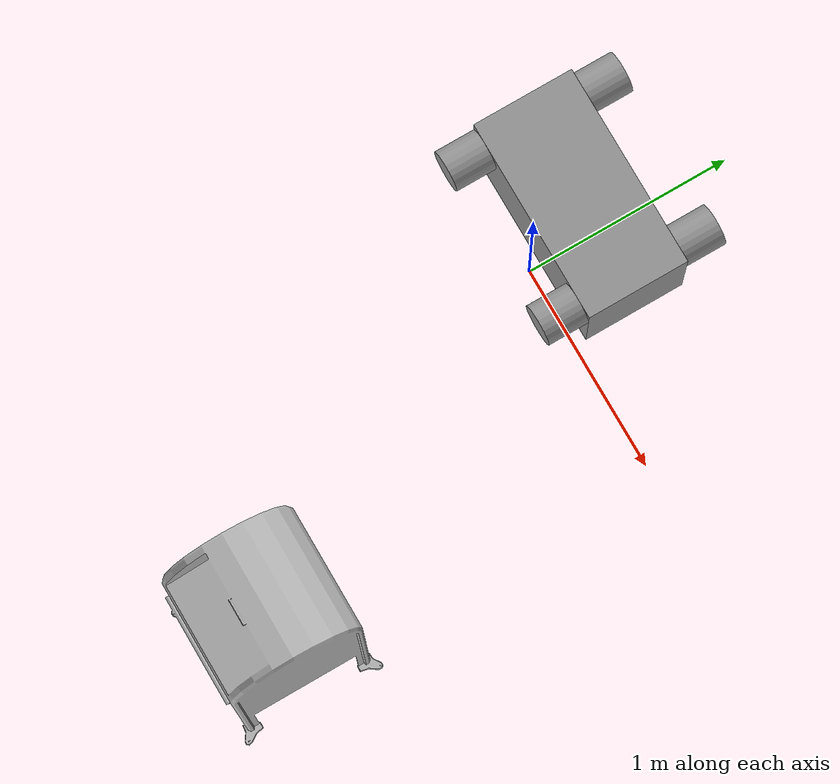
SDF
<?xml version='1.0'?>
<sdf version='1.6'>
  <model name='MODEL'>
    <link name='link_0'>
      <pose frame=''>-0.167264 0.352485 -0.099993 0 -0 0</pose>
      <inertial>
        <mass>1</mass>
        <inertia>
          <ixx>0.166667</ixx>
          <ixy>0</ixy>
          <ixz>0</ixz>
          <iyy>0.166667</iyy>
          <iyz>0</iyz>
          <izz>0.166667</izz>
        </inertia>
        <pose frame=''>0 0 0 0 -0 0</pose>
      </inertial>
      <gravity>1</gravity>
      <self_collide>0</self_collide>
      <kinematic>0</kinematic>
      <visual name='visual'>
        <pose frame=''>0 0 0 0 -0 0</pose>
        <geometry>
          <box>
            <size>1 0.5 0.5</size>
          </box>
        </geometry>
        <material>
          <lighting>1</lighting>
          <script>
            <uri>file://media/materials/scripts/gazebo.material</uri>
            <name>Gazebo/Grey</name>
          </script>
          <shader type='pixel'>
            <normal_map>__default__</normal_map>
          </shader>
          <ambient>0.3 0.3 0.3 1</ambient>
          <diffuse>0.7 0.7 0.7 1</diffuse>
          <specular>0.01 0.01 0.01 1</specular>
          <emissive>0 0 0 1</emissive>
        </material>
        <transparency>0</transparency>
        <cast_shadows>1</cast_shadows>
      </visual>
      <collision name='collision'>
        <laser_retro>0</laser_retro>
        <max_contacts>10</max_contacts>
        <pose frame=''>0 0 0 0 -0 0</pose>
        <geometry>
          <box>
            <size>1 0.5 0.5</size>
          </box>
        </geometry>
        <surface>
          <friction>
            <ode>
              <mu>1</mu>
              <mu2>1</mu2>
              <fdir1>0 0 0</fdir1>
              <slip1>0</slip1>
              <slip2>0</slip2>
            </ode>
            <torsional>
              <coefficient>1</coefficient>
              <patch_radius>0</patch_radius>
              <surface_radius>0</surface_radius>
              <use_patch_radius>1</use_patch_radius>
              <ode>
                <slip>0</slip>
              </ode>
            </torsional>
          </friction>
          <bounce>
            <restitution_coefficient>0</restitution_coefficient>
            <threshold>1e+06</threshold>
          </bounce>
          <contact>
            <collide_without_contact>0</collide_without_contact>
            <collide_without_contact_bitmask>1</collide_without_contact_bitmask>
            <collide_bitmask>1</collide_bitmask>
            <ode>
              <soft_cfm>0</soft_cfm>
              <soft_erp>0.2</soft_erp>
              <kp>1e+13</kp>
              <kd>1</kd>
              <max_vel>0.01</max_vel>
              <min_depth>0</min_depth>
            </ode>
            <bullet>
              <split_impulse>1</split_impulse>
              <split_impulse_penetration_threshold>-0.01</split_impulse_penetration_threshold>
              <soft_cfm>0</soft_cfm>
              <soft_erp>0.2</soft_erp>
              <kp>1e+13</kp>
              <kd>1</kd>
            </bullet>
          </contact>
        </surface>
      </collision>
    </link>
    <link name='link_1_clone'>
      <pose frame=''>-0.567264 0.702495 0.049997 1.5707 -0 0</pose>
      <inertial>
        <mass>1</mass>
        <inertia>
          <ixx>0.145833</ixx>
          <ixy>0</ixy>
          <ixz>0</ixz>
          <iyy>0.145833</iyy>
          <iyz>0</iyz>
          <izz>0.125</izz>
        </inertia>
        <pose frame=''>0 0 0 1.5707 -0 0</pose>
      </inertial>
      <self_collide>0</self_collide>
      <kinematic>0</kinematic>
      <gravity>1</gravity>
      <visual name='visual'>
        <pose frame=''>0 0 0 0 -0 0</pose>
        <geometry>
          <cylinder>
            <radius>0.1</radius>
            <length>0.2</length>
          </cylinder>
        </geometry>
        <material>
          <lighting>1</lighting>
          <script>
            <uri>file://media/materials/scripts/gazebo.material</uri>
            <name>Gazebo/Grey</name>
          </script>
          <shader type='pixel'>
            <normal_map>__default__</normal_map>
          </shader>
          <ambient>0.3 0.3 0.3 1</ambient>
          <diffuse>0.7 0.7 0.7 1</diffuse>
          <specular>0.01 0.01 0.01 1</specular>
          <emissive>0 0 0 1</emissive>
        </material>
        <transparency>0</transparency>
        <cast_shadows>1</cast_shadows>
      </visual>
      <collision name='collision'>
        <laser_retro>0</laser_retro>
        <max_contacts>10</max_contacts>
        <pose frame=''>0 0 0 0 -0 0</pose>
        <geometry>
          <cylinder>
            <radius>0.1</radius>
            <length>0.2</length>
          </cylinder>
        </geometry>
        <surface>
          <friction>
            <ode>
              <mu>1</mu>
              <mu2>1</mu2>
              <fdir1>0 0 0</fdir1>
              <slip1>0</slip1>
              <slip2>0</slip2>
            </ode>
            <torsional>
              <coefficient>1</coefficient>
              <patch_radius>0</patch_radius>
              <surface_radius>0</surface_radius>
              <use_patch_radius>1</use_patch_radius>
              <ode>
                <slip>0</slip>
              </ode>
            </torsional>
          </friction>
          <bounce>
            <restitution_coefficient>0</restitution_coefficient>
            <threshold>1e+06</threshold>
          </bounce>
          <contact>
            <collide_without_contact>0</collide_without_contact>
            <collide_without_contact_bitmask>1</collide_without_contact_bitmask>
            <collide_bitmask>1</collide_bitmask>
            <ode>
              <soft_cfm>0</soft_cfm>
              <soft_erp>0.2</soft_erp>
              <kp>1e+13</kp>
              <kd>1</kd>
              <max_vel>0.01</max_vel>
              <min_depth>0</min_depth>
            </ode>
            <bullet>
              <split_impulse>1</split_impulse>
              <split_impulse_penetration_threshold>-0.01</split_impulse_penetration_threshold>
              <soft_cfm>0</soft_cfm>
              <soft_erp>0.2</soft_erp>
              <kp>1e+13</kp>
              <kd>1</kd>
            </bullet>
          </contact>
        </surface>
      </collision>
    </link>
    <link name='link_1_clone_clone'>
      <pose frame=''>0.232736 0.702495 0.049997 1.5707 -0 0</pose>
      <inertial>
        <mass>1</mass>
        <inertia>
          <ixx>0.145833</ixx>
          <ixy>0</ixy>
          <ixz>0</ixz>
          <iyy>0.145833</iyy>
          <iyz>0</iyz>
          <izz>0.125</izz>
        </inertia>
        <pose frame=''>0 0 0 1.5707 -0 0</pose>
      </inertial>
      <self_collide>0</self_collide>
      <kinematic>0</kinematic>
      <visual name='visual'>
        <pose frame=''>0 0 0 0 -0 0</pose>
        <geometry>
          <cylinder>
            <radius>0.1</radius>
            <length>0.2</length>
          </cylinder>
        </geometry>
        <material>
          <lighting>1</lighting>
          <script>
            <uri>file://media/materials/scripts/gazebo.material</uri>
            <name>Gazebo/Grey</name>
          </script>
          <shader type='pixel'>
            <normal_map>__default__</normal_map>
          </shader>
          <ambient>0.3 0.3 0.3 1</ambient>
          <diffuse>0.7 0.7 0.7 1</diffuse>
          <specular>0.01 0.01 0.01 1</specular>
          <emissive>0 0 0 1</emissive>
        </material>
        <transparency>0</transparency>
        <cast_shadows>1</cast_shadows>
      </visual>
      <collision name='collision'>
        <laser_retro>0</laser_retro>
        <max_contacts>10</max_contacts>
        <pose frame=''>0 0 0 0 -0 0</pose>
        <geometry>
          <cylinder>
            <radius>0.1</radius>
            <length>0.2</length>
          </cylinder>
        </geometry>
        <surface>
          <friction>
            <ode>
              <mu>1</mu>
              <mu2>1</mu2>
              <fdir1>0 0 0</fdir1>
              <slip1>0</slip1>
              <slip2>0</slip2>
            </ode>
            <torsional>
              <coefficient>1</coefficient>
              <patch_radius>0</patch_radius>
              <surface_radius>0</surface_radius>
              <use_patch_radius>1</use_patch_radius>
              <ode>
                <slip>0</slip>
              </ode>
            </torsional>
          </friction>
          <bounce>
            <restitution_coefficient>0</restitution_coefficient>
            <threshold>1e+06</threshold>
          </bounce>
          <contact>
            <collide_without_contact>0</collide_without_contact>
            <collide_without_contact_bitmask>1</collide_without_contact_bitmask>
            <collide_bitmask>1</collide_bitmask>
            <ode>
              <soft_cfm>0</soft_cfm>
              <soft_erp>0.2</soft_erp>
              <kp>1e+13</kp>
              <kd>1</kd>
              <max_vel>0.01</max_vel>
              <min_depth>0</min_depth>
            </ode>
            <bullet>
              <split_impulse>1</split_impulse>
              <split_impulse_penetration_threshold>-0.01</split_impulse_penetration_threshold>
              <soft_cfm>0</soft_cfm>
              <soft_erp>0.2</soft_erp>
              <kp>1e+13</kp>
              <kd>1</kd>
            </bullet>
          </contact>
        </surface>
      </collision>
    </link>
    <link name='link_1_clone_clone_0'>
      <pose frame=''>-0.567264 0.002475 0.049997 1.5707 -0 0</pose>
      <inertial>
        <mass>1</mass>
        <inertia>
          <ixx>0.145833</ixx>
          <ixy>0</ixy>
          <ixz>0</ixz>
          <iyy>0.145833</iyy>
          <iyz>0</iyz>
          <izz>0.125</izz>
        </inertia>
        <pose frame=''>0 0 0 1.5707 -0 0</pose>
      </inertial>
      <self_collide>0</self_collide>
      <kinematic>0</kinematic>
      <visual name='visual'>
        <pose frame=''>0 0 0 0 -0 0</pose>
        <geometry>
          <cylinder>
            <radius>0.1</radius>
            <length>0.2</length>
          </cylinder>
        </geometry>
        <material>
          <lighting>1</lighting>
          <script>
            <uri>file://media/materials/scripts/gazebo.material</uri>
            <name>Gazebo/Grey</name>
          </script>
          <shader type='pixel'>
            <normal_map>__default__</normal_map>
          </shader>
          <ambient>0.3 0.3 0.3 1</ambient>
          <diffuse>0.7 0.7 0.7 1</diffuse>
          <specular>0.01 0.01 0.01 1</specular>
          <emissive>0 0 0 1</emissive>
        </material>
        <transparency>0</transparency>
        <cast_shadows>1</cast_shadows>
      </visual>
      <collision name='collision'>
        <laser_retro>0</laser_retro>
        <max_contacts>10</max_contacts>
        <pose frame=''>0 0 0 0 -0 0</pose>
        <geometry>
          <cylinder>
            <radius>0.1</radius>
            <length>0.2</length>
          </cylinder>
        </geometry>
        <surface>
          <friction>
            <ode>
              <mu>1</mu>
              <mu2>1</mu2>
              <fdir1>0 0 0</fdir1>
              <slip1>0</slip1>
              <slip2>0</slip2>
            </ode>
            <torsional>
              <coefficient>1</coefficient>
              <patch_radius>0</patch_radius>
              <surface_radius>0</surface_radius>
              <use_patch_radius>1</use_patch_radius>
              <ode>
                <slip>0</slip>
              </ode>
            </torsional>
          </friction>
          <bounce>
            <restitution_coefficient>0</restitution_coefficient>
            <threshold>1e+06</threshold>
          </bounce>
          <contact>
            <collide_without_contact>0</collide_without_contact>
            <collide_without_contact_bitmask>1</collide_without_contact_bitmask>
            <collide_bitmask>1</collide_bitmask>
            <ode>
              <soft_cfm>0</soft_cfm>
              <soft_erp>0.2</soft_erp>
              <kp>1e+13</kp>
              <kd>1</kd>
              <max_vel>0.01</max_vel>
              <min_depth>0</min_depth>
            </ode>
            <bullet>
              <split_impulse>1</split_impulse>
              <split_impulse_penetration_threshold>-0.01</split_impulse_penetration_threshold>
              <soft_cfm>0</soft_cfm>
              <soft_erp>0.2</soft_erp>
              <kp>1e+13</kp>
              <kd>1</kd>
            </bullet>
          </contact>
        </surface>
      </collision>
    </link>
    <link name='link_1_clone_clone_1'>
      <pose frame=''>0.232736 0.002475 0.049997 1.5707 -0 0</pose>
      <inertial>
        <mass>1</mass>
        <inertia>
          <ixx>0.145833</ixx>
          <ixy>0</ixy>
          <ixz>0</ixz>
          <iyy>0.145833</iyy>
          <iyz>0</iyz>
          <izz>0.125</izz>
        </inertia>
        <pose frame=''>0 0 0 1.5707 -0 0</pose>
      </inertial>
      <self_collide>0</self_collide>
      <kinematic>0</kinematic>
      <visual name='visual'>
        <pose frame=''>0 0 0 0 -0 0</pose>
        <geometry>
          <cylinder>
            <radius>0.1</radius>
            <length>0.2</length>
          </cylinder>
        </geometry>
        <material>
          <lighting>1</lighting>
          <script>
            <uri>file://media/materials/scripts/gazebo.material</uri>
            <name>Gazebo/Grey</name>
          </script>
          <shader type='pixel'>
            <normal_map>__default__</normal_map>
          </shader>
          <ambient>0.3 0.3 0.3 1</ambient>
          <diffuse>0.7 0.7 0.7 1</diffuse>
          <specular>0.01 0.01 0.01 1</specular>
          <emissive>0 0 0 1</emissive>
        </material>
        <transparency>0</transparency>
        <cast_shadows>1</cast_shadows>
      </visual>
      <collision name='collision'>
        <laser_retro>0</laser_retro>
        <max_contacts>10</max_contacts>
        <pose frame=''>0 0 0 0 -0 0</pose>
        <geometry>
          <cylinder>
            <radius>0.1</radius>
            <length>0.2</length>
          </cylinder>
        </geometry>
        <surface>
          <friction>
            <ode>
              <mu>1</mu>
              <mu2>1</mu2>
              <fdir1>0 0 0</fdir1>
              <slip1>0</slip1>
              <slip2>0</slip2>
            </ode>
            <torsional>
              <coefficient>1</coefficient>
              <patch_radius>0</patch_radius>
              <surface_radius>0</surface_radius>
              <use_patch_radius>1</use_patch_radius>
              <ode>
                <slip>0</slip>
              </ode>
            </torsional>
          </friction>
          <bounce>
            <restitution_coefficient>0</restitution_coefficient>
            <threshold>1e+06</threshold>
          </bounce>
          <contact>
            <collide_without_contact>0</collide_without_contact>
            <collide_without_contact_bitmask>1</collide_without_contact_bitmask>
            <collide_bitmask>1</collide_bitmask>
            <ode>
              <soft_cfm>0</soft_cfm>
              <soft_erp>0.2</soft_erp>
              <kp>1e+13</kp>
              <kd>1</kd>
              <max_vel>0.01</max_vel>
              <min_depth>0</min_depth>
            </ode>
            <bullet>
              <split_impulse>1</split_impulse>
              <split_impulse_penetration_threshold>-0.01</split_impulse_penetration_threshold>
              <soft_cfm>0</soft_cfm>
              <soft_erp>0.2</soft_erp>
              <kp>1e+13</kp>
              <kd>1</kd>
            </bullet>
          </contact>
        </surface>
      </collision>
    </link>
    <model name='postbox'>
      <static>1</static>
      <link name='link'>
        <collision name='collision'>
          <geometry>
            <mesh>
              <uri>model://postbox/meshes/postbox.dae</uri>
            </mesh>
          </geometry>
        </collision>
        <visual name='visual'>
          <geometry>
            <mesh>
              <uri>model://postbox/meshes/postbox.dae</uri>
            </mesh>
          </geometry>
        </visual>
      </link>
      <pose frame=''>0.836321 -1.76243 -0.099993 0 -0 0</pose>
    </model>
    <joint name='link_0_JOINT_1' type='revolute'>
      <parent>link_0</parent>
      <child>link_1_clone_clone_0</child>
      <pose frame=''>0 0 0 0 -0 0</pose>
      <axis>
        <xyz>0 1 0</xyz>
        <use_parent_model_frame>0</use_parent_model_frame>
        <limit>
          <lower>-1.79769e+308</lower>
          <upper>1.79769e+308</upper>
          <effort>-1</effort>
          <velocity>-1</velocity>
        </limit>
        <dynamics>
          <spring_reference>0</spring_reference>
          <spring_stiffness>0</spring_stiffness>
          <damping>0</damping>
        </dynamics>
      </axis>
      <physics>
        <ode>
          <limit>
            <cfm>0</cfm>
            <erp>0.2</erp>
          </limit>
          <suspension>
            <cfm>0</cfm>
            <erp>0.2</erp>
          </suspension>
        </ode>
      </physics>
    </joint>
    <joint name='link_0_JOINT_2' type='revolute'>
      <parent>link_0</parent>
      <child>link_1_clone</child>
      <pose frame=''>0 0 0 0 -0 0</pose>
      <axis>
        <xyz>0 1 0</xyz>
        <use_parent_model_frame>0</use_parent_model_frame>
        <limit>
          <lower>-1.79769e+308</lower>
          <upper>1.79769e+308</upper>
          <effort>-1</effort>
          <velocity>-1</velocity>
        </limit>
        <dynamics>
          <spring_reference>0</spring_reference>
          <spring_stiffness>0</spring_stiffness>
          <damping>0</damping>
        </dynamics>
      </axis>
      <physics>
        <ode>
          <limit>
            <cfm>0</cfm>
            <erp>0.2</erp>
          </limit>
          <suspension>
            <cfm>0</cfm>
            <erp>0.2</erp>
          </suspension>
        </ode>
      </physics>
    </joint>
    <joint name='link_0_JOINT_3' type='revolute'>
      <parent>link_0</parent>
      <child>link_1_clone_clone_1</child>
      <pose frame=''>0 0 0 0 -0 0</pose>
      <axis>
        <xyz>0 1 0</xyz>
        <use_parent_model_frame>0</use_parent_model_frame>
        <limit>
          <lower>-1.79769e+308</lower>
          <upper>1.79769e+308</upper>
          <effort>-1</effort>
          <velocity>-1</velocity>
        </limit>
        <dynamics>
          <spring_reference>0</spring_reference>
          <spring_stiffness>0</spring_stiffness>
          <damping>0</damping>
        </dynamics>
      </axis>
      <physics>
        <ode>
          <limit>
            <cfm>0</cfm>
            <erp>0.2</erp>
          </limit>
          <suspension>
            <cfm>0</cfm>
            <erp>0.2</erp>
          </suspension>
        </ode>
      </physics>
    </joint>
    <joint name='link_0_JOINT_4' type='revolute'>
      <parent>link_0</parent>
      <child>link_1_clone_clone</child>
      <pose frame=''>0 0 0 0 -0 0</pose>
      <axis>
        <xyz>0 1 0</xyz>
        <use_parent_model_frame>0</use_parent_model_frame>
        <limit>
          <lower>-1.79769e+308</lower>
          <upper>1.79769e+308</upper>
          <effort>-1</effort>
          <velocity>-1</velocity>
        </limit>
        <dynamics>
          <spring_reference>0</spring_reference>
          <spring_stiffness>0</spring_stiffness>
          <damping>0</damping>
        </dynamics>
      </axis>
      <physics>
        <ode>
          <limit>
            <cfm>0</cfm>
            <erp>0.2</erp>
          </limit>
          <suspension>
            <cfm>0</cfm>
            <erp>0.2</erp>
          </suspension>
        </ode>
      </physics>
    </joint>
    <static>0</static>
    <allow_auto_disable>1</allow_auto_disable>
  </model>
</sdf>
